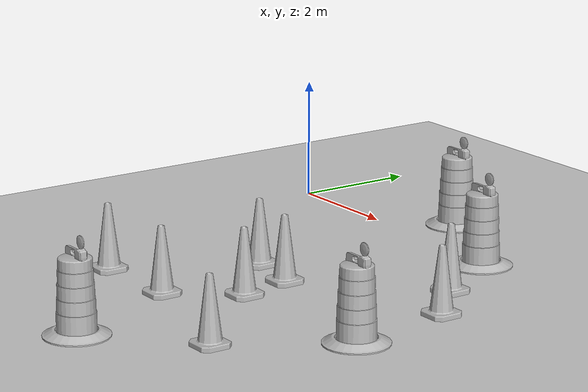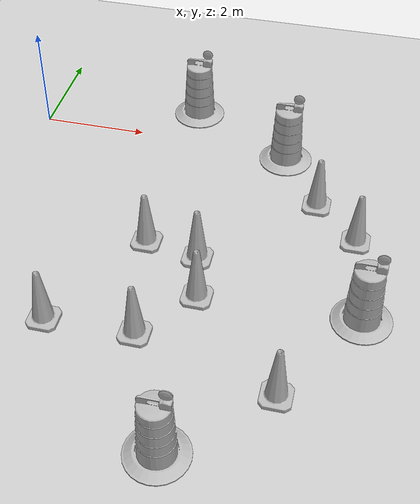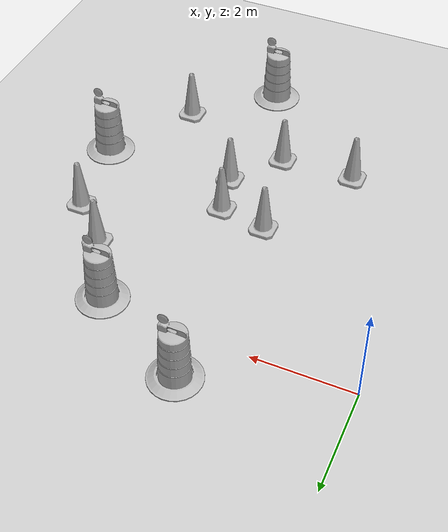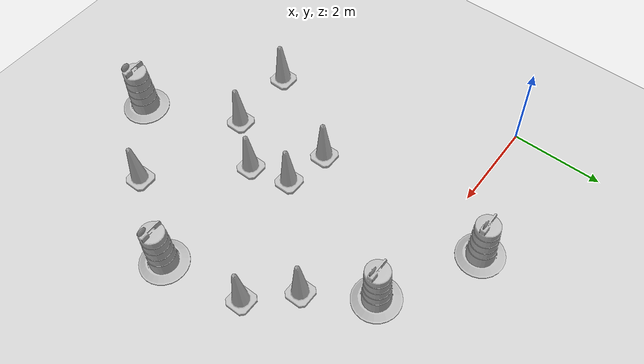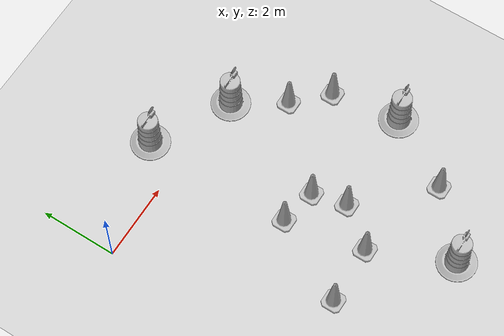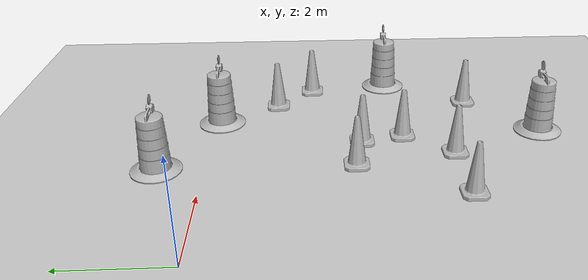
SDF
<sdf version="1.7">
 <world name="default">
  <light name="sun" type="directional">
   <pose>0 0 10 0 -0 0</pose>
   <diffuse>0.8 0.8 0.8 1</diffuse>
   <specular>0.2 0.2 0.2 1</specular>
   <attenuation>
    <range>1000</range>
    <constant>0.9</constant>
    <linear>0.01</linear>
    <quadratic>0.001</quadratic>
   </attenuation>
   <direction>-0.5 0.1 -0.9</direction>
   <spot><inner_angle>0</inner_angle><outer_angle>0</outer_angle><falloff>0</falloff></spot>
  </light>
  <model name="ground_plane">
   <static>1</static>
   <link name="link">
    <collision name="collision">
     <geometry><plane><normal>0 0 1</normal><size>100 100</size></plane></geometry>
     <surface>
      <contact><collide_bitmask>65535</collide_bitmask></contact>
      <friction><ode><mu>100</mu><mu2>50</mu2></ode></friction>
     </surface>
    </collision>
    <visual name="visual">
     <cast_shadows>0</cast_shadows>
     <geometry><plane><normal>0 0 1</normal><size>100 100</size></plane></geometry>
     <material>
      <script><uri>file://media/materials/scripts/gazebo.material</uri><name>Gazebo/Grey</name></script>
     </material>
    </visual>
   </link>
  </model>
  <gravity>0 0 -9.8</gravity>
  <magnetic_field>6e-06 2.3e-05 -4.2e-05</magnetic_field>
  <atmosphere type="adiabatic"/>
  <physics type="ode">
   <max_step_size>0.001</max_step_size>
   <real_time_factor>1</real_time_factor>
   <real_time_update_rate>1000</real_time_update_rate>
  </physics>
  <scene><ambient>0.4 0.4 0.4 1</ambient><background>0.7 0.7 0.7 1</background><shadows>1</shadows></scene>
  <audio><device>default</device></audio>
  <spherical_coordinates>
   <surface_model>EARTH_WGS84</surface_model>
   <latitude_deg>0</latitude_deg>
   <longitude_deg>0</longitude_deg>
   <elevation>0</elevation>
   <heading_deg>0</heading_deg>
  </spherical_coordinates>
  <model name="Construction Barrel">
   <link name="link">
    <inertial>
     <pose>0 0 0.4 0 -0 0</pose>
     <mass>500</mass>
     <inertia><ixx>51.2096</ixx><iyy>51.2096</iyy><izz>25</izz><ixy>0</ixy><ixz>0</ixz><iyz>0</iyz></inertia>
    </inertial>
    <collision name="collision">
     <geometry><mesh><uri>model://construction_barrel/meshes/construction_barrel.dae</uri></mesh></geometry>
    </collision>
    <visual name="visual">
     <geometry><mesh><uri>model://construction_barrel/meshes/construction_barrel.dae</uri></mesh></geometry>
    </visual>
   </link>
   <pose>2.97553 0.913856 -2e-06 -0 7e-06 -2.2e-05</pose>
  </model>
  <model name="Construction Barrel_0">
   <link name="link">
    <inertial>
     <pose>0 0 0.4 0 -0 0</pose>
     <mass>500</mass>
     <inertia><ixx>51.2096</ixx><iyy>51.2096</iyy><izz>25</izz><ixy>0</ixy><ixz>0</ixz><iyz>0</iyz></inertia>
    </inertial>
    <collision name="collision">
     <geometry><mesh><uri>model://construction_barrel/meshes/construction_barrel.dae</uri></mesh></geometry>
    </collision>
    <visual name="visual">
     <geometry><mesh><uri>model://construction_barrel/meshes/construction_barrel.dae</uri></mesh></geometry>
    </visual>
   </link>
   <pose>4.96765 -0.174639 -2e-06 0 7e-06 -2.1e-05</pose>
  </model>
  <model name="Construction Cone">
   <link name="link">
    <collision name="collision">
     <geometry>
      <mesh><scale>10 10 10</scale><uri>model://construction_cone/meshes/construction_cone.dae</uri></mesh>
     </geometry>
    </collision>
    <visual name="visual">
     <geometry>
      <mesh><scale>10 10 10</scale><uri>model://construction_cone/meshes/construction_cone.dae</uri></mesh>
     </geometry>
    </visual>
    <inertial>
     <inertia><ixx>1</ixx><ixy>0</ixy><ixz>0</ixz><iyy>1</iyy><iyz>0</iyz><izz>1</izz></inertia>
     <mass>1</mass>
    </inertial>
   </link>
   <pose>6.54908 -2.20775 -0 0 -0 0</pose>
  </model>
  <model name="Construction Cone_0">
   <link name="link">
    <collision name="collision">
     <geometry>
      <mesh><scale>10 10 10</scale><uri>model://construction_cone/meshes/construction_cone.dae</uri></mesh>
     </geometry>
    </collision>
    <visual name="visual">
     <geometry>
      <mesh><scale>10 10 10</scale><uri>model://construction_cone/meshes/construction_cone.dae</uri></mesh>
     </geometry>
    </visual>
    <inertial>
     <inertia><ixx>1</ixx><ixy>0</ixy><ixz>0</ixz><iyy>1</iyy><iyz>0</iyz><izz>1</izz></inertia>
     <mass>1</mass>
    </inertial>
   </link>
   <pose>2.95507 -3.02925 -1e-06 2e-06 2e-06 0</pose>
  </model>
  <model name="Construction Cone_1">
   <link name="link">
    <collision name="collision">
     <geometry>
      <mesh><scale>10 10 10</scale><uri>model://construction_cone/meshes/construction_cone.dae</uri></mesh>
     </geometry>
    </collision>
    <visual name="visual">
     <geometry>
      <mesh><scale>10 10 10</scale><uri>model://construction_cone/meshes/construction_cone.dae</uri></mesh>
     </geometry>
    </visual>
    <inertial>
     <inertia><ixx>1</ixx><ixy>0</ixy><ixz>0</ixz><iyy>1</iyy><iyz>0</iyz><izz>1</izz></inertia>
     <mass>1</mass>
    </inertial>
   </link>
   <pose>3.92029 -3.21412 -0 0 -1e-06 0</pose>
  </model>
  <model name="Construction Cone_2">
   <link name="link">
    <collision name="collision">
     <geometry>
      <mesh><scale>10 10 10</scale><uri>model://construction_cone/meshes/construction_cone.dae</uri></mesh>
     </geometry>
    </collision>
    <visual name="visual">
     <geometry>
      <mesh><scale>10 10 10</scale><uri>model://construction_cone/meshes/construction_cone.dae</uri></mesh>
     </geometry>
    </visual>
    <inertial>
     <inertia><ixx>1</ixx><ixy>0</ixy><ixz>0</ixz><iyy>1</iyy><iyz>0</iyz><izz>1</izz></inertia>
     <mass>1</mass>
    </inertial>
   </link>
   <pose>4.1257 -4.0972 -1e-06 1e-06 -2e-06 -0</pose>
  </model>
  <model name="Construction Cone_3">
   <link name="link">
    <collision name="collision">
     <geometry>
      <mesh><scale>10 10 10</scale><uri>model://construction_cone/meshes/construction_cone.dae</uri></mesh>
     </geometry>
    </collision>
    <visual name="visual">
     <geometry>
      <mesh><scale>10 10 10</scale><uri>model://construction_cone/meshes/construction_cone.dae</uri></mesh>
     </geometry>
    </visual>
    <inertial>
     <inertia><ixx>1</ixx><ixy>0</ixy><ixz>0</ixz><iyy>1</iyy><iyz>0</iyz><izz>1</izz></inertia>
     <mass>1</mass>
    </inertial>
   </link>
   <pose>3.34528 -5.08303 0 -0 -0 -0</pose>
  </model>
  <model name="Construction Cone_4">
   <link name="link">
    <collision name="collision">
     <geometry>
      <mesh><scale>10 10 10</scale><uri>model://construction_cone/meshes/construction_cone.dae</uri></mesh>
     </geometry>
    </collision>
    <visual name="visual">
     <geometry>
      <mesh><scale>10 10 10</scale><uri>model://construction_cone/meshes/construction_cone.dae</uri></mesh>
     </geometry>
    </visual>
    <inertial>
     <inertia><ixx>1</ixx><ixy>0</ixy><ixz>0</ixz><iyy>1</iyy><iyz>0</iyz><izz>1</izz></inertia>
     <mass>1</mass>
    </inertial>
   </link>
   <pose>5.74815 -1.40682 0 -0 -0 -0</pose>
  </model>
  <model name="Construction Barrel_1">
   <link name="link">
    <inertial>
     <pose>0 0 0.4 0 -0 0</pose>
     <mass>500</mass>
     <inertia><ixx>51.2096</ixx><iyy>51.2096</iyy><izz>25</izz><ixy>0</ixy><ixz>0</ixz><iyz>0</iyz></inertia>
    </inertial>
    <collision name="collision">
     <geometry><mesh><uri>model://construction_barrel/meshes/construction_barrel.dae</uri></mesh></geometry>
    </collision>
    <visual name="visual">
     <geometry><mesh><uri>model://construction_barrel/meshes/construction_barrel.dae</uri></mesh></geometry>
    </visual>
   </link>
   <pose>6.8366 -3.97405 -0 0 0 -1.3e-05</pose>
  </model>
  <model name="Construction Cone_5">
   <link name="link">
    <collision name="collision">
     <geometry>
      <mesh><scale>10 10 10</scale><uri>model://construction_cone/meshes/construction_cone.dae</uri></mesh>
     </geometry>
    </collision>
    <visual name="visual">
     <geometry>
      <mesh><scale>10 10 10</scale><uri>model://construction_cone/meshes/construction_cone.dae</uri></mesh>
     </geometry>
    </visual>
    <inertial>
     <inertia><ixx>1</ixx><ixy>0</ixy><ixz>0</ixz><iyy>1</iyy><iyz>0</iyz><izz>1</izz></inertia>
     <mass>1</mass>
    </inertial>
   </link>
   <pose>1.82553 -5.12411 -0 -0 -0 -0</pose>
  </model>
  <model name="Construction Cone_6">
   <link name="link">
    <collision name="collision">
     <geometry>
      <mesh><scale>10 10 10</scale><uri>model://construction_cone/meshes/construction_cone.dae</uri></mesh>
     </geometry>
    </collision>
    <visual name="visual">
     <geometry>
      <mesh><scale>10 10 10</scale><uri>model://construction_cone/meshes/construction_cone.dae</uri></mesh>
     </geometry>
    </visual>
    <inertial>
     <inertia><ixx>1</ixx><ixy>0</ixy><ixz>0</ixz><iyy>1</iyy><iyz>0</iyz><izz>1</izz></inertia>
     <mass>1</mass>
    </inertial>
   </link>
   <pose>5.74815 -5.76074 -0 0 -1e-06 0</pose>
  </model>
  <model name="Construction Barrel_2">
   <link name="link">
    <inertial>
     <pose>0 0 0.4 0 -0 0</pose>
     <mass>500</mass>
     <inertia><ixx>51.2096</ixx><iyy>51.2096</iyy><izz>25</izz><ixy>0</ixy><ixz>0</ixz><iyz>0</iyz></inertia>
    </inertial>
    <collision name="collision">
     <geometry><mesh><uri>model://construction_barrel/meshes/construction_barrel.dae</uri></mesh></geometry>
    </collision>
    <visual name="visual">
     <geometry><mesh><uri>model://construction_barrel/meshes/construction_barrel.dae</uri></mesh></geometry>
    </visual>
   </link>
   <pose>4.27164 -7.09596 -2e-06 4e-06 7e-06 -4e-06</pose>
  </model>
 </world>
</sdf>
